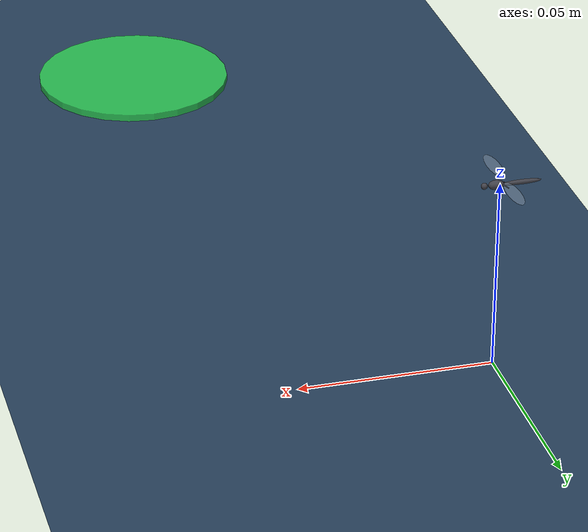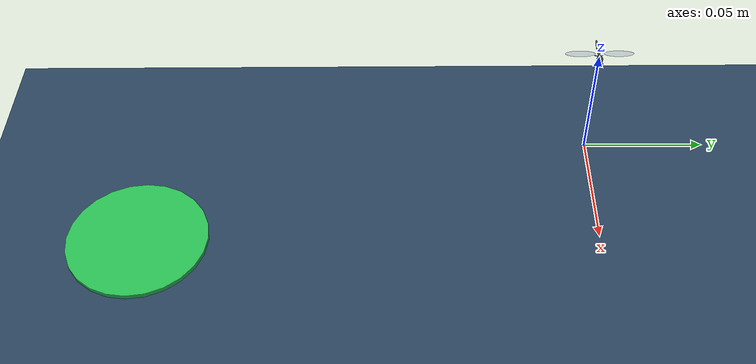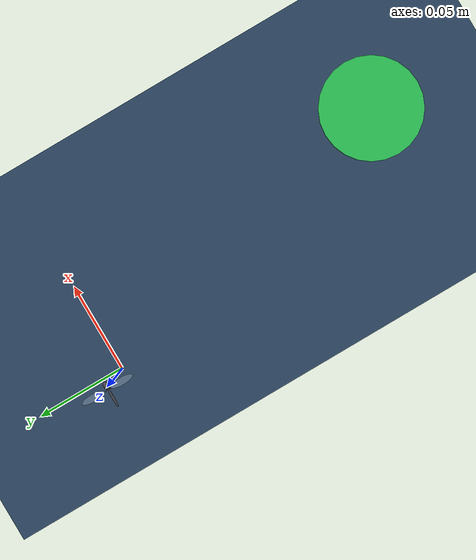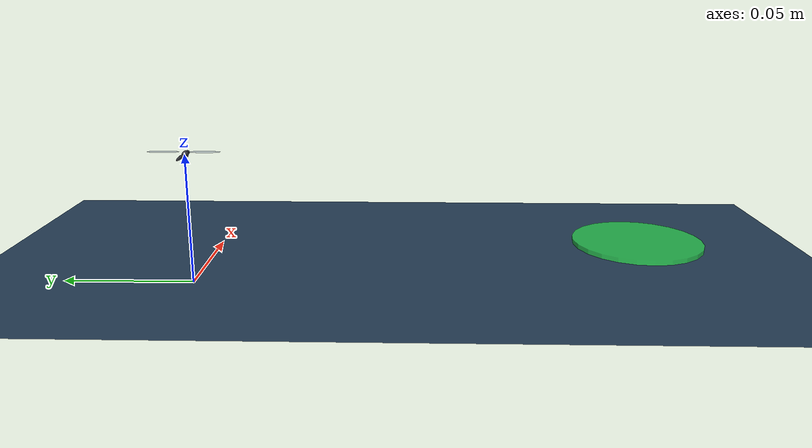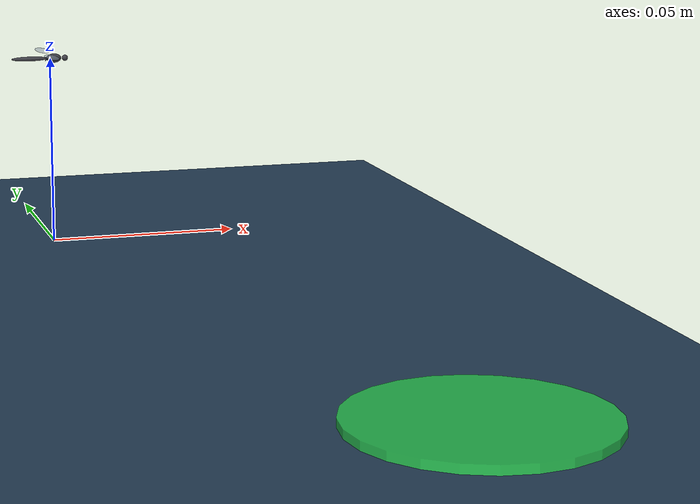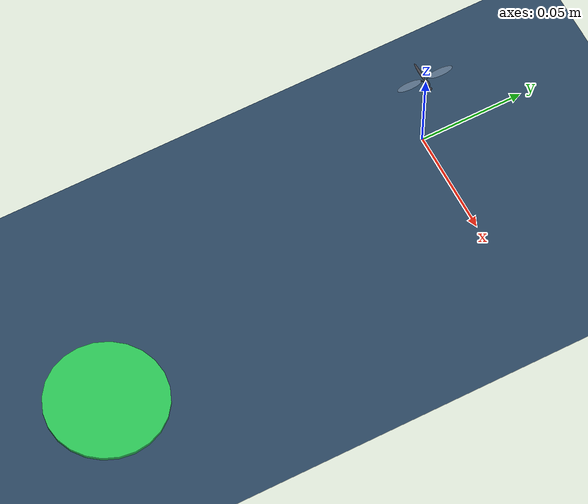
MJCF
<mujoco model="flapping_flyer">

  <option timestep="1e-4" gravity="0 0 -9.81" integrator="implicitfast"/>

  <!-- ===================== VISUALS (menagerie look) ===================== -->
  <visual>
    <headlight diffuse="0.6 0.6 0.6" ambient="0.3 0.3 0.3" specular="0 0 0"/>
    <rgba haze="0.15 0.25 0.35 1"/>
    <global azimuth="120" elevation="-20" offwidth="1280" offheight="960"/>
  </visual>

  <asset>
    <texture type="skybox" builtin="gradient" rgb1="0.3 0.5 0.7" rgb2="0 0 0"
             width="512" height="3072"/>
    <texture type="2d" name="groundplane" builtin="checker" mark="edge"
             rgb1="0.2 0.3 0.4" rgb2="0.1 0.2 0.3" markrgb="0.8 0.8 0.8"
             width="300" height="300"/>
    <material name="groundplane" texture="groundplane" texuniform="true"
              texrepeat="5 5" reflectance="0.2"/>
    <material name="thorax_mat" rgba="0.25 0.25 0.28 1"/>
    <material name="wing_mat"   rgba="0.55 0.62 0.70 0.45"/>
  </asset>

  <default>
    <joint damping="1e-8" armature="0"/>
    <geom density="1200"/>
  </default>

  <worldbody>
    <light pos="0 0 0.3" dir="0 0 -1" directional="true"
           diffuse="0.7 0.7 0.7"/>
    <geom name="floor" type="plane" size="0 0 0.01" material="groundplane"/>
    <geom name="bw0" type="box" pos="0.0000 0.0308 0.0400" size="0.0050 0.0050 0.0400" group="3" rgba="0.62 0.66 0.72 1" contype="0" conaffinity="0"/>
    <geom name="bw1" type="box" pos="0.0069 0.0308 0.0400" size="0.0050 0.0050 0.0400" group="3" rgba="0.62 0.66 0.72 1" contype="0" conaffinity="0"/>
    <geom name="bw2" type="box" pos="0.0138 0.0308 0.0400" size="0.0050 0.0050 0.0400" group="3" rgba="0.62 0.66 0.72 1" contype="0" conaffinity="0"/>
    <geom name="bw3" type="box" pos="0.0208 0.0308 0.0400" size="0.0050 0.0050 0.0400" group="3" rgba="0.62 0.66 0.72 1" contype="0" conaffinity="0"/>
    <geom name="bw4" type="box" pos="0.0277 0.0308 0.0400" size="0.0050 0.0050 0.0400" group="3" rgba="0.62 0.66 0.72 1" contype="0" conaffinity="0"/>
    <geom name="bw5" type="box" pos="0.0346 0.0308 0.0400" size="0.0050 0.0050 0.0400" group="3" rgba="0.62 0.66 0.72 1" contype="0" conaffinity="0"/>
    <geom name="bw6" type="box" pos="0.0415 0.0308 0.0400" size="0.0050 0.0050 0.0400" group="3" rgba="0.62 0.66 0.72 1" contype="0" conaffinity="0"/>
    <geom name="bw7" type="box" pos="0.0484 0.0308 0.0400" size="0.0050 0.0050 0.0400" group="3" rgba="0.62 0.66 0.72 1" contype="0" conaffinity="0"/>
    <geom name="bw8" type="box" pos="0.0554 0.0308 0.0400" size="0.0050 0.0050 0.0400" group="3" rgba="0.62 0.66 0.72 1" contype="0" conaffinity="0"/>
    <geom name="bw9" type="box" pos="0.0623 0.0308 0.0400" size="0.0050 0.0050 0.0400" group="3" rgba="0.62 0.66 0.72 1" contype="0" conaffinity="0"/>
    <geom name="bw10" type="box" pos="0.0692 0.0308 0.0400" size="0.0050 0.0050 0.0400" group="3" rgba="0.62 0.66 0.72 1" contype="0" conaffinity="0"/>
    <geom name="bw11" type="box" pos="0.0761 0.0308 0.0400" size="0.0050 0.0050 0.0400" group="3" rgba="0.62 0.66 0.72 1" contype="0" conaffinity="0"/>
    <geom name="bw12" type="box" pos="0.0831 0.0308 0.0400" size="0.0050 0.0050 0.0400" group="3" rgba="0.62 0.66 0.72 1" contype="0" conaffinity="0"/>
    <geom name="bw13" type="box" pos="0.0900 0.0308 0.0400" size="0.0050 0.0050 0.0400" group="3" rgba="0.62 0.66 0.72 1" contype="0" conaffinity="0"/>
    <geom name="bw14" type="box" pos="0.0969 0.0308 0.0400" size="0.0050 0.0050 0.0400" group="3" rgba="0.62 0.66 0.72 1" contype="0" conaffinity="0"/>
    <geom name="bw15" type="box" pos="0.1038 0.0308 0.0400" size="0.0050 0.0050 0.0400" group="3" rgba="0.62 0.66 0.72 1" contype="0" conaffinity="0"/>
    <geom name="bw16" type="box" pos="0.1107 0.0308 0.0400" size="0.0050 0.0050 0.0400" group="3" rgba="0.62 0.66 0.72 1" contype="0" conaffinity="0"/>
    <geom name="bw17" type="box" pos="0.1177 0.0308 0.0400" size="0.0050 0.0050 0.0400" group="3" rgba="0.62 0.66 0.72 1" contype="0" conaffinity="0"/>
    <geom name="bw18" type="box" pos="0.1246 0.0308 0.0400" size="0.0050 0.0050 0.0400" group="3" rgba="0.62 0.66 0.72 1" contype="0" conaffinity="0"/>
    <geom name="bw19" type="box" pos="0.1315 0.0308 0.0400" size="0.0050 0.0050 0.0400" group="3" rgba="0.62 0.66 0.72 1" contype="0" conaffinity="0"/>
    <geom name="bw20" type="box" pos="0.1384 0.0308 0.0400" size="0.0050 0.0050 0.0400" group="3" rgba="0.62 0.66 0.72 1" contype="0" conaffinity="0"/>
    <geom name="bw21" type="box" pos="0.1453 0.0308 0.0400" size="0.0050 0.0050 0.0400" group="3" rgba="0.62 0.66 0.72 1" contype="0" conaffinity="0"/>
    <geom name="bw22" type="box" pos="0.1523 0.0308 0.0400" size="0.0050 0.0050 0.0400" group="3" rgba="0.62 0.66 0.72 1" contype="0" conaffinity="0"/>
    <geom name="bw23" type="box" pos="0.1592 0.0308 0.0400" size="0.0050 0.0050 0.0400" group="3" rgba="0.62 0.66 0.72 1" contype="0" conaffinity="0"/>
    <geom name="bw24" type="box" pos="0.1661 0.0308 0.0400" size="0.0050 0.0050 0.0400" group="3" rgba="0.62 0.66 0.72 1" contype="0" conaffinity="0"/>
    <geom name="bw25" type="box" pos="0.1730 0.0308 0.0400" size="0.0050 0.0050 0.0400" group="3" rgba="0.62 0.66 0.72 1" contype="0" conaffinity="0"/>
    <geom name="bw26" type="box" pos="0.1799 0.0308 0.0400" size="0.0050 0.0050 0.0400" group="3" rgba="0.62 0.66 0.72 1" contype="0" conaffinity="0"/>
    <geom name="bw27" type="box" pos="0.1869 0.0308 0.0400" size="0.0050 0.0050 0.0400" group="3" rgba="0.62 0.66 0.72 1" contype="0" conaffinity="0"/>
    <geom name="bw28" type="box" pos="0.1938 0.0308 0.0400" size="0.0050 0.0050 0.0400" group="3" rgba="0.62 0.66 0.72 1" contype="0" conaffinity="0"/>
    <geom name="bw29" type="box" pos="0.2007 0.0308 0.0400" size="0.0050 0.0050 0.0400" group="3" rgba="0.62 0.66 0.72 1" contype="0" conaffinity="0"/>
    <geom name="bw30" type="box" pos="0.2076 0.0308 0.0400" size="0.0050 0.0050 0.0400" group="3" rgba="0.62 0.66 0.72 1" contype="0" conaffinity="0"/>
    <geom name="bw31" type="box" pos="0.2146 0.0308 0.0400" size="0.0050 0.0050 0.0400" group="3" rgba="0.62 0.66 0.72 1" contype="0" conaffinity="0"/>
    <geom name="bw32" type="box" pos="0.2215 0.0308 0.0400" size="0.0050 0.0050 0.0400" group="3" rgba="0.62 0.66 0.72 1" contype="0" conaffinity="0"/>
    <geom name="bw33" type="box" pos="0.2284 0.0308 0.0400" size="0.0050 0.0050 0.0400" group="3" rgba="0.62 0.66 0.72 1" contype="0" conaffinity="0"/>
    <geom name="bw34" type="box" pos="0.2353 0.0308 0.0400" size="0.0050 0.0050 0.0400" group="3" rgba="0.62 0.66 0.72 1" contype="0" conaffinity="0"/>
    <geom name="bw35" type="box" pos="0.2422 0.0308 0.0400" size="0.0050 0.0050 0.0400" group="3" rgba="0.62 0.66 0.72 1" contype="0" conaffinity="0"/>
    <geom name="bw36" type="box" pos="0.2492 0.0308 0.0400" size="0.0050 0.0050 0.0400" group="3" rgba="0.62 0.66 0.72 1" contype="0" conaffinity="0"/>
    <geom name="bw37" type="box" pos="0.2561 0.0308 0.0400" size="0.0050 0.0050 0.0400" group="3" rgba="0.62 0.66 0.72 1" contype="0" conaffinity="0"/>
    <geom name="bw38" type="box" pos="0.2630 0.0308 0.0400" size="0.0050 0.0050 0.0400" group="3" rgba="0.62 0.66 0.72 1" contype="0" conaffinity="0"/>
    <geom name="bw39" type="box" pos="0.0000 -0.0308 0.0400" size="0.0050 0.0050 0.0400" group="3" rgba="0.62 0.66 0.72 1" contype="0" conaffinity="0"/>
    <geom name="bw40" type="box" pos="0.0069 -0.0308 0.0400" size="0.0050 0.0050 0.0400" group="3" rgba="0.62 0.66 0.72 1" contype="0" conaffinity="0"/>
    <geom name="bw41" type="box" pos="0.0137 -0.0308 0.0400" size="0.0050 0.0050 0.0400" group="3" rgba="0.62 0.66 0.72 1" contype="0" conaffinity="0"/>
    <geom name="bw42" type="box" pos="0.0206 -0.0308 0.0400" size="0.0050 0.0050 0.0400" group="3" rgba="0.62 0.66 0.72 1" contype="0" conaffinity="0"/>
    <geom name="bw43" type="box" pos="0.0274 -0.0308 0.0400" size="0.0050 0.0050 0.0400" group="3" rgba="0.62 0.66 0.72 1" contype="0" conaffinity="0"/>
    <geom name="bw44" type="box" pos="0.0343 -0.0308 0.0400" size="0.0050 0.0050 0.0400" group="3" rgba="0.62 0.66 0.72 1" contype="0" conaffinity="0"/>
    <geom name="bw45" type="box" pos="0.0412 -0.0308 0.0400" size="0.0050 0.0050 0.0400" group="3" rgba="0.62 0.66 0.72 1" contype="0" conaffinity="0"/>
    <geom name="bw46" type="box" pos="0.0480 -0.0308 0.0400" size="0.0050 0.0050 0.0400" group="3" rgba="0.62 0.66 0.72 1" contype="0" conaffinity="0"/>
    <geom name="bw47" type="box" pos="0.0549 -0.0308 0.0400" size="0.0050 0.0050 0.0400" group="3" rgba="0.62 0.66 0.72 1" contype="0" conaffinity="0"/>
    <geom name="bw48" type="box" pos="0.0618 -0.0308 0.0400" size="0.0050 0.0050 0.0400" group="3" rgba="0.62 0.66 0.72 1" contype="0" conaffinity="0"/>
    <geom name="bw49" type="box" pos="0.0686 -0.0308 0.0400" size="0.0050 0.0050 0.0400" group="3" rgba="0.62 0.66 0.72 1" contype="0" conaffinity="0"/>
    <geom name="bw50" type="box" pos="0.0755 -0.0308 0.0400" size="0.0050 0.0050 0.0400" group="3" rgba="0.62 0.66 0.72 1" contype="0" conaffinity="0"/>
    <geom name="bw51" type="box" pos="0.0823 -0.0308 0.0400" size="0.0050 0.0050 0.0400" group="3" rgba="0.62 0.66 0.72 1" contype="0" conaffinity="0"/>
    <geom name="bw52" type="box" pos="0.0892 -0.0308 0.0400" size="0.0050 0.0050 0.0400" group="3" rgba="0.62 0.66 0.72 1" contype="0" conaffinity="0"/>
    <geom name="bw53" type="box" pos="0.0961 -0.0308 0.0400" size="0.0050 0.0050 0.0400" group="3" rgba="0.62 0.66 0.72 1" contype="0" conaffinity="0"/>
    <geom name="bw54" type="box" pos="0.1029 -0.0308 0.0400" size="0.0050 0.0050 0.0400" group="3" rgba="0.62 0.66 0.72 1" contype="0" conaffinity="0"/>
    <geom name="bw55" type="box" pos="0.1098 -0.0308 0.0400" size="0.0050 0.0050 0.0400" group="3" rgba="0.62 0.66 0.72 1" contype="0" conaffinity="0"/>
    <geom name="bw56" type="box" pos="0.1167 -0.0308 0.0400" size="0.0050 0.0050 0.0400" group="3" rgba="0.62 0.66 0.72 1" contype="0" conaffinity="0"/>
    <geom name="bw57" type="box" pos="0.1235 -0.0308 0.0400" size="0.0050 0.0050 0.0400" group="3" rgba="0.62 0.66 0.72 1" contype="0" conaffinity="0"/>
    <geom name="bw58" type="box" pos="0.1304 -0.0308 0.0400" size="0.0050 0.0050 0.0400" group="3" rgba="0.62 0.66 0.72 1" contype="0" conaffinity="0"/>
    <geom name="bw59" type="box" pos="0.1372 -0.0308 0.0400" size="0.0050 0.0050 0.0400" group="3" rgba="0.62 0.66 0.72 1" contype="0" conaffinity="0"/>
    <geom name="bw60" type="box" pos="0.1441 -0.0308 0.0400" size="0.0050 0.0050 0.0400" group="3" rgba="0.62 0.66 0.72 1" contype="0" conaffinity="0"/>
    <geom name="bw61" type="box" pos="0.1510 -0.0308 0.0400" size="0.0050 0.0050 0.0400" group="3" rgba="0.62 0.66 0.72 1" contype="0" conaffinity="0"/>
    <geom name="bw62" type="box" pos="0.1578 -0.0308 0.0400" size="0.0050 0.0050 0.0400" group="3" rgba="0.62 0.66 0.72 1" contype="0" conaffinity="0"/>
    <geom name="bw63" type="box" pos="0.1647 -0.0308 0.0400" size="0.0050 0.0050 0.0400" group="3" rgba="0.62 0.66 0.72 1" contype="0" conaffinity="0"/>
    <geom name="bw64" type="box" pos="0.1716 -0.0308 0.0400" size="0.0050 0.0050 0.0400" group="3" rgba="0.62 0.66 0.72 1" contype="0" conaffinity="0"/>
    <geom name="bw65" type="box" pos="0.1784 -0.0308 0.0400" size="0.0050 0.0050 0.0400" group="3" rgba="0.62 0.66 0.72 1" contype="0" conaffinity="0"/>
    <geom name="bw66" type="box" pos="0.1853 -0.0308 0.0400" size="0.0050 0.0050 0.0400" group="3" rgba="0.62 0.66 0.72 1" contype="0" conaffinity="0"/>
    <geom name="bw67" type="box" pos="0.1921 -0.0308 0.0400" size="0.0050 0.0050 0.0400" group="3" rgba="0.62 0.66 0.72 1" contype="0" conaffinity="0"/>
    <geom name="bw68" type="box" pos="0.1990 -0.0308 0.0400" size="0.0050 0.0050 0.0400" group="3" rgba="0.62 0.66 0.72 1" contype="0" conaffinity="0"/>
    <geom name="bw69" type="box" pos="0.2059 -0.0308 0.0400" size="0.0050 0.0050 0.0400" group="3" rgba="0.62 0.66 0.72 1" contype="0" conaffinity="0"/>
    <geom name="bw70" type="box" pos="0.2630 0.0308 0.0400" size="0.0050 0.0050 0.0400" group="3" rgba="0.62 0.66 0.72 1" contype="0" conaffinity="0"/>
    <geom name="bw71" type="box" pos="0.2630 0.0240 0.0400" size="0.0050 0.0050 0.0400" group="3" rgba="0.62 0.66 0.72 1" contype="0" conaffinity="0"/>
    <geom name="bw72" type="box" pos="0.2630 0.0172 0.0400" size="0.0050 0.0050 0.0400" group="3" rgba="0.62 0.66 0.72 1" contype="0" conaffinity="0"/>
    <geom name="bw73" type="box" pos="0.2630 0.0103 0.0400" size="0.0050 0.0050 0.0400" group="3" rgba="0.62 0.66 0.72 1" contype="0" conaffinity="0"/>
    <geom name="bw74" type="box" pos="0.2630 0.0035 0.0400" size="0.0050 0.0050 0.0400" group="3" rgba="0.62 0.66 0.72 1" contype="0" conaffinity="0"/>
    <geom name="bw75" type="box" pos="0.2630 -0.0033 0.0400" size="0.0050 0.0050 0.0400" group="3" rgba="0.62 0.66 0.72 1" contype="0" conaffinity="0"/>
    <geom name="bw76" type="box" pos="0.2630 -0.0102 0.0400" size="0.0050 0.0050 0.0400" group="3" rgba="0.62 0.66 0.72 1" contype="0" conaffinity="0"/>
    <geom name="bw77" type="box" pos="0.2630 -0.0170 0.0400" size="0.0050 0.0050 0.0400" group="3" rgba="0.62 0.66 0.72 1" contype="0" conaffinity="0"/>
    <geom name="bw78" type="box" pos="0.2630 -0.0238 0.0400" size="0.0050 0.0050 0.0400" group="3" rgba="0.62 0.66 0.72 1" contype="0" conaffinity="0"/>
    <geom name="bw79" type="box" pos="0.2630 -0.0306 0.0400" size="0.0050 0.0050 0.0400" group="3" rgba="0.62 0.66 0.72 1" contype="0" conaffinity="0"/>
    <geom name="bw80" type="box" pos="0.2630 -0.0375 0.0400" size="0.0050 0.0050 0.0400" group="3" rgba="0.62 0.66 0.72 1" contype="0" conaffinity="0"/>
    <geom name="bw81" type="box" pos="0.2630 -0.0443 0.0400" size="0.0050 0.0050 0.0400" group="3" rgba="0.62 0.66 0.72 1" contype="0" conaffinity="0"/>
    <geom name="bw82" type="box" pos="0.2630 -0.0511 0.0400" size="0.0050 0.0050 0.0400" group="3" rgba="0.62 0.66 0.72 1" contype="0" conaffinity="0"/>
    <geom name="bw83" type="box" pos="0.2630 -0.0579 0.0400" size="0.0050 0.0050 0.0400" group="3" rgba="0.62 0.66 0.72 1" contype="0" conaffinity="0"/>
    <geom name="bw84" type="box" pos="0.2630 -0.0648 0.0400" size="0.0050 0.0050 0.0400" group="3" rgba="0.62 0.66 0.72 1" contype="0" conaffinity="0"/>
    <geom name="bw85" type="box" pos="0.2630 -0.0716 0.0400" size="0.0050 0.0050 0.0400" group="3" rgba="0.62 0.66 0.72 1" contype="0" conaffinity="0"/>
    <geom name="bw86" type="box" pos="0.2630 -0.0784 0.0400" size="0.0050 0.0050 0.0400" group="3" rgba="0.62 0.66 0.72 1" contype="0" conaffinity="0"/>
    <geom name="bw87" type="box" pos="0.2630 -0.0852 0.0400" size="0.0050 0.0050 0.0400" group="3" rgba="0.62 0.66 0.72 1" contype="0" conaffinity="0"/>
    <geom name="bw88" type="box" pos="0.2630 -0.0921 0.0400" size="0.0050 0.0050 0.0400" group="3" rgba="0.62 0.66 0.72 1" contype="0" conaffinity="0"/>
    <geom name="bw89" type="box" pos="0.2630 -0.0989 0.0400" size="0.0050 0.0050 0.0400" group="3" rgba="0.62 0.66 0.72 1" contype="0" conaffinity="0"/>
    <geom name="bw90" type="box" pos="0.2630 -0.1588 0.0400" size="0.0050 0.0050 0.0400" group="3" rgba="0.62 0.66 0.72 1" contype="0" conaffinity="0"/>
    <geom name="bw91" type="box" pos="0.2630 -0.1657 0.0400" size="0.0050 0.0050 0.0400" group="3" rgba="0.62 0.66 0.72 1" contype="0" conaffinity="0"/>
    <geom name="bw92" type="box" pos="0.2630 -0.1725 0.0400" size="0.0050 0.0050 0.0400" group="3" rgba="0.62 0.66 0.72 1" contype="0" conaffinity="0"/>
    <geom name="bw93" type="box" pos="0.2630 -0.1793 0.0400" size="0.0050 0.0050 0.0400" group="3" rgba="0.62 0.66 0.72 1" contype="0" conaffinity="0"/>
    <geom name="bw94" type="box" pos="0.2630 -0.1861 0.0400" size="0.0050 0.0050 0.0400" group="3" rgba="0.62 0.66 0.72 1" contype="0" conaffinity="0"/>
    <geom name="bw95" type="box" pos="0.2630 -0.1929 0.0400" size="0.0050 0.0050 0.0400" group="3" rgba="0.62 0.66 0.72 1" contype="0" conaffinity="0"/>
    <geom name="bw96" type="box" pos="0.2630 -0.1997 0.0400" size="0.0050 0.0050 0.0400" group="3" rgba="0.62 0.66 0.72 1" contype="0" conaffinity="0"/>
    <geom name="bw97" type="box" pos="0.2630 -0.2065 0.0400" size="0.0050 0.0050 0.0400" group="3" rgba="0.62 0.66 0.72 1" contype="0" conaffinity="0"/>
    <geom name="bw98" type="box" pos="0.2630 -0.2133 0.0400" size="0.0050 0.0050 0.0400" group="3" rgba="0.62 0.66 0.72 1" contype="0" conaffinity="0"/>
    <geom name="bw99" type="box" pos="0.2059 -0.0308 0.0400" size="0.0050 0.0050 0.0400" group="3" rgba="0.62 0.66 0.72 1" contype="0" conaffinity="0"/>
    <geom name="bw100" type="box" pos="0.2059 -0.0376 0.0400" size="0.0050 0.0050 0.0400" group="3" rgba="0.62 0.66 0.72 1" contype="0" conaffinity="0"/>
    <geom name="bw101" type="box" pos="0.2059 -0.0443 0.0400" size="0.0050 0.0050 0.0400" group="3" rgba="0.62 0.66 0.72 1" contype="0" conaffinity="0"/>
    <geom name="bw102" type="box" pos="0.2059 -0.0510 0.0400" size="0.0050 0.0050 0.0400" group="3" rgba="0.62 0.66 0.72 1" contype="0" conaffinity="0"/>
    <geom name="bw103" type="box" pos="0.2059 -0.0578 0.0400" size="0.0050 0.0050 0.0400" group="3" rgba="0.62 0.66 0.72 1" contype="0" conaffinity="0"/>
    <geom name="bw104" type="box" pos="0.2059 -0.0645 0.0400" size="0.0050 0.0050 0.0400" group="3" rgba="0.62 0.66 0.72 1" contype="0" conaffinity="0"/>
    <geom name="bw105" type="box" pos="0.2059 -0.0713 0.0400" size="0.0050 0.0050 0.0400" group="3" rgba="0.62 0.66 0.72 1" contype="0" conaffinity="0"/>
    <geom name="bw106" type="box" pos="0.2059 -0.0780 0.0400" size="0.0050 0.0050 0.0400" group="3" rgba="0.62 0.66 0.72 1" contype="0" conaffinity="0"/>
    <geom name="bw107" type="box" pos="0.2059 -0.0848 0.0400" size="0.0050 0.0050 0.0400" group="3" rgba="0.62 0.66 0.72 1" contype="0" conaffinity="0"/>
    <geom name="bw108" type="box" pos="0.2059 -0.0915 0.0400" size="0.0050 0.0050 0.0400" group="3" rgba="0.62 0.66 0.72 1" contype="0" conaffinity="0"/>
    <geom name="bw109" type="box" pos="0.2059 -0.0983 0.0400" size="0.0050 0.0050 0.0400" group="3" rgba="0.62 0.66 0.72 1" contype="0" conaffinity="0"/>
    <geom name="bw110" type="box" pos="0.2059 -0.1050 0.0400" size="0.0050 0.0050 0.0400" group="3" rgba="0.62 0.66 0.72 1" contype="0" conaffinity="0"/>
    <geom name="bw111" type="box" pos="0.2059 -0.1118 0.0400" size="0.0050 0.0050 0.0400" group="3" rgba="0.62 0.66 0.72 1" contype="0" conaffinity="0"/>
    <geom name="bw112" type="box" pos="0.2059 -0.1185 0.0400" size="0.0050 0.0050 0.0400" group="3" rgba="0.62 0.66 0.72 1" contype="0" conaffinity="0"/>
    <geom name="bw113" type="box" pos="0.2059 -0.1253 0.0400" size="0.0050 0.0050 0.0400" group="3" rgba="0.62 0.66 0.72 1" contype="0" conaffinity="0"/>
    <geom name="bw114" type="box" pos="0.2059 -0.1320 0.0400" size="0.0050 0.0050 0.0400" group="3" rgba="0.62 0.66 0.72 1" contype="0" conaffinity="0"/>
    <geom name="bw115" type="box" pos="0.2059 -0.1388 0.0400" size="0.0050 0.0050 0.0400" group="3" rgba="0.62 0.66 0.72 1" contype="0" conaffinity="0"/>
    <geom name="bw116" type="box" pos="0.2059 -0.1455 0.0400" size="0.0050 0.0050 0.0400" group="3" rgba="0.62 0.66 0.72 1" contype="0" conaffinity="0"/>
    <geom name="bw117" type="box" pos="0.2059 -0.1523 0.0400" size="0.0050 0.0050 0.0400" group="3" rgba="0.62 0.66 0.72 1" contype="0" conaffinity="0"/>
    <geom name="bw118" type="box" pos="0.2630 -0.2133 0.0400" size="0.0050 0.0050 0.0400" group="3" rgba="0.62 0.66 0.72 1" contype="0" conaffinity="0"/>
    <geom name="bw119" type="box" pos="0.2562 -0.2133 0.0400" size="0.0050 0.0050 0.0400" group="3" rgba="0.62 0.66 0.72 1" contype="0" conaffinity="0"/>
    <geom name="bw120" type="box" pos="0.2493 -0.2133 0.0400" size="0.0050 0.0050 0.0400" group="3" rgba="0.62 0.66 0.72 1" contype="0" conaffinity="0"/>
    <geom name="bw121" type="box" pos="0.2425 -0.2133 0.0400" size="0.0050 0.0050 0.0400" group="3" rgba="0.62 0.66 0.72 1" contype="0" conaffinity="0"/>
    <geom name="bw122" type="box" pos="0.2357 -0.2133 0.0400" size="0.0050 0.0050 0.0400" group="3" rgba="0.62 0.66 0.72 1" contype="0" conaffinity="0"/>
    <geom name="bw123" type="box" pos="0.2288 -0.2133 0.0400" size="0.0050 0.0050 0.0400" group="3" rgba="0.62 0.66 0.72 1" contype="0" conaffinity="0"/>
    <geom name="bw124" type="box" pos="0.2220 -0.2133 0.0400" size="0.0050 0.0050 0.0400" group="3" rgba="0.62 0.66 0.72 1" contype="0" conaffinity="0"/>
    <geom name="bw125" type="box" pos="0.2152 -0.2133 0.0400" size="0.0050 0.0050 0.0400" group="3" rgba="0.62 0.66 0.72 1" contype="0" conaffinity="0"/>
    <geom name="bw126" type="box" pos="0.2083 -0.2133 0.0400" size="0.0050 0.0050 0.0400" group="3" rgba="0.62 0.66 0.72 1" contype="0" conaffinity="0"/>
    <geom name="bw127" type="box" pos="0.2015 -0.2133 0.0400" size="0.0050 0.0050 0.0400" group="3" rgba="0.62 0.66 0.72 1" contype="0" conaffinity="0"/>
    <geom name="bw128" type="box" pos="0.1946 -0.2133 0.0400" size="0.0050 0.0050 0.0400" group="3" rgba="0.62 0.66 0.72 1" contype="0" conaffinity="0"/>
    <geom name="bw129" type="box" pos="0.1878 -0.2133 0.0400" size="0.0050 0.0050 0.0400" group="3" rgba="0.62 0.66 0.72 1" contype="0" conaffinity="0"/>
    <geom name="bw130" type="box" pos="0.1810 -0.2133 0.0400" size="0.0050 0.0050 0.0400" group="3" rgba="0.62 0.66 0.72 1" contype="0" conaffinity="0"/>
    <geom name="bw131" type="box" pos="0.1741 -0.2133 0.0400" size="0.0050 0.0050 0.0400" group="3" rgba="0.62 0.66 0.72 1" contype="0" conaffinity="0"/>
    <geom name="bw132" type="box" pos="0.1673 -0.2133 0.0400" size="0.0050 0.0050 0.0400" group="3" rgba="0.62 0.66 0.72 1" contype="0" conaffinity="0"/>
    <geom name="bw133" type="box" pos="0.1605 -0.2133 0.0400" size="0.0050 0.0050 0.0400" group="3" rgba="0.62 0.66 0.72 1" contype="0" conaffinity="0"/>
    <geom name="bw134" type="box" pos="0.1536 -0.2133 0.0400" size="0.0050 0.0050 0.0400" group="3" rgba="0.62 0.66 0.72 1" contype="0" conaffinity="0"/>
    <geom name="bw135" type="box" pos="0.1468 -0.2133 0.0400" size="0.0050 0.0050 0.0400" group="3" rgba="0.62 0.66 0.72 1" contype="0" conaffinity="0"/>
    <geom name="bw136" type="box" pos="0.1400 -0.2133 0.0400" size="0.0050 0.0050 0.0400" group="3" rgba="0.62 0.66 0.72 1" contype="0" conaffinity="0"/>
    <geom name="bw137" type="box" pos="0.1331 -0.2133 0.0400" size="0.0050 0.0050 0.0400" group="3" rgba="0.62 0.66 0.72 1" contype="0" conaffinity="0"/>
    <geom name="bw138" type="box" pos="0.1263 -0.2133 0.0400" size="0.0050 0.0050 0.0400" group="3" rgba="0.62 0.66 0.72 1" contype="0" conaffinity="0"/>
    <geom name="bw139" type="box" pos="0.1194 -0.2133 0.0400" size="0.0050 0.0050 0.0400" group="3" rgba="0.62 0.66 0.72 1" contype="0" conaffinity="0"/>
    <geom name="bw140" type="box" pos="0.1126 -0.2133 0.0400" size="0.0050 0.0050 0.0400" group="3" rgba="0.62 0.66 0.72 1" contype="0" conaffinity="0"/>
    <geom name="bw141" type="box" pos="0.1058 -0.2133 0.0400" size="0.0050 0.0050 0.0400" group="3" rgba="0.62 0.66 0.72 1" contype="0" conaffinity="0"/>
    <geom name="bw142" type="box" pos="0.0989 -0.2133 0.0400" size="0.0050 0.0050 0.0400" group="3" rgba="0.62 0.66 0.72 1" contype="0" conaffinity="0"/>
    <geom name="bw143" type="box" pos="0.0921 -0.2133 0.0400" size="0.0050 0.0050 0.0400" group="3" rgba="0.62 0.66 0.72 1" contype="0" conaffinity="0"/>
    <geom name="bw144" type="box" pos="0.0853 -0.2133 0.0400" size="0.0050 0.0050 0.0400" group="3" rgba="0.62 0.66 0.72 1" contype="0" conaffinity="0"/>
    <geom name="bw145" type="box" pos="0.0784 -0.2133 0.0400" size="0.0050 0.0050 0.0400" group="3" rgba="0.62 0.66 0.72 1" contype="0" conaffinity="0"/>
    <geom name="bw146" type="box" pos="0.0716 -0.2133 0.0400" size="0.0050 0.0050 0.0400" group="3" rgba="0.62 0.66 0.72 1" contype="0" conaffinity="0"/>
    <geom name="bw147" type="box" pos="0.0648 -0.2133 0.0400" size="0.0050 0.0050 0.0400" group="3" rgba="0.62 0.66 0.72 1" contype="0" conaffinity="0"/>
    <geom name="bw148" type="box" pos="0.0579 -0.2133 0.0400" size="0.0050 0.0050 0.0400" group="3" rgba="0.62 0.66 0.72 1" contype="0" conaffinity="0"/>
    <geom name="bw149" type="box" pos="0.0511 -0.2133 0.0400" size="0.0050 0.0050 0.0400" group="3" rgba="0.62 0.66 0.72 1" contype="0" conaffinity="0"/>
    <geom name="bw150" type="box" pos="0.2059 -0.1523 0.0400" size="0.0050 0.0050 0.0400" group="3" rgba="0.62 0.66 0.72 1" contype="0" conaffinity="0"/>
    <geom name="bw151" type="box" pos="0.1992 -0.1523 0.0400" size="0.0050 0.0050 0.0400" group="3" rgba="0.62 0.66 0.72 1" contype="0" conaffinity="0"/>
    <geom name="bw152" type="box" pos="0.1925 -0.1523 0.0400" size="0.0050 0.0050 0.0400" group="3" rgba="0.62 0.66 0.72 1" contype="0" conaffinity="0"/>
    <geom name="bw153" type="box" pos="0.1859 -0.1523 0.0400" size="0.0050 0.0050 0.0400" group="3" rgba="0.62 0.66 0.72 1" contype="0" conaffinity="0"/>
    <geom name="bw154" type="box" pos="0.1792 -0.1523 0.0400" size="0.0050 0.0050 0.0400" group="3" rgba="0.62 0.66 0.72 1" contype="0" conaffinity="0"/>
    <geom name="bw155" type="box" pos="0.1726 -0.1523 0.0400" size="0.0050 0.0050 0.0400" group="3" rgba="0.62 0.66 0.72 1" contype="0" conaffinity="0"/>
    <geom name="bw156" type="box" pos="0.1659 -0.1523 0.0400" size="0.0050 0.0050 0.0400" group="3" rgba="0.62 0.66 0.72 1" contype="0" conaffinity="0"/>
    <geom name="bw157" type="box" pos="0.1592 -0.1523 0.0400" size="0.0050 0.0050 0.0400" group="3" rgba="0.62 0.66 0.72 1" contype="0" conaffinity="0"/>
    <geom name="bw158" type="box" pos="0.1526 -0.1523 0.0400" size="0.0050 0.0050 0.0400" group="3" rgba="0.62 0.66 0.72 1" contype="0" conaffinity="0"/>
    <geom name="bw159" type="box" pos="0.1459 -0.1523 0.0400" size="0.0050 0.0050 0.0400" group="3" rgba="0.62 0.66 0.72 1" contype="0" conaffinity="0"/>
    <geom name="bw160" type="box" pos="0.1392 -0.1523 0.0400" size="0.0050 0.0050 0.0400" group="3" rgba="0.62 0.66 0.72 1" contype="0" conaffinity="0"/>
    <geom name="bw161" type="box" pos="0.0963 -0.1523 0.0400" size="0.0050 0.0050 0.0400" group="3" rgba="0.62 0.66 0.72 1" contype="0" conaffinity="0"/>
    <geom name="bw162" type="box" pos="0.0898 -0.1523 0.0400" size="0.0050 0.0050 0.0400" group="3" rgba="0.62 0.66 0.72 1" contype="0" conaffinity="0"/>
    <geom name="bw163" type="box" pos="0.0834 -0.1523 0.0400" size="0.0050 0.0050 0.0400" group="3" rgba="0.62 0.66 0.72 1" contype="0" conaffinity="0"/>
    <geom name="bw164" type="box" pos="0.0769 -0.1523 0.0400" size="0.0050 0.0050 0.0400" group="3" rgba="0.62 0.66 0.72 1" contype="0" conaffinity="0"/>
    <geom name="bw165" type="box" pos="0.0705 -0.1523 0.0400" size="0.0050 0.0050 0.0400" group="3" rgba="0.62 0.66 0.72 1" contype="0" conaffinity="0"/>
    <geom name="bw166" type="box" pos="0.0640 -0.1523 0.0400" size="0.0050 0.0050 0.0400" group="3" rgba="0.62 0.66 0.72 1" contype="0" conaffinity="0"/>
    <geom name="bw167" type="box" pos="0.0575 -0.1523 0.0400" size="0.0050 0.0050 0.0400" group="3" rgba="0.62 0.66 0.72 1" contype="0" conaffinity="0"/>
    <geom name="bw168" type="box" pos="0.0511 -0.1523 0.0400" size="0.0050 0.0050 0.0400" group="3" rgba="0.62 0.66 0.72 1" contype="0" conaffinity="0"/>
    <geom name="fin0" type="cylinder" pos="0.0511 -0.1828 0.001" size="0.0280 0.001" rgba="0.2 0.85 0.35 0.85" group="2" contype="0" conaffinity="0"/>

    <body name="thorax" pos="0 0 0.05">

      <!-- main flight mass: thorax block, just below the wing hinges -->
      <geom name="thorax_g" type="ellipsoid" pos="0.001 0 0"
            size="0.0020 0.0012 0.0012" mass="60e-6" material="thorax_mat"/>
      <!-- head: small, forward -->
      <geom name="head_g" type="sphere" pos="0.0040 0 0"
            size="0.0008" mass="3e-6" material="thorax_mat"/>
      <!-- abdomen / tail: long, THIN, LIGHT, trailing aft. Tapered ellipsoid
           reads as an abdomen and gives a little aft area for pitch stability
           at almost no mass cost. -->
      <geom name="tail_g" type="ellipsoid" pos="-0.0055 0 0"
            size="0.0050 0.0006 0.0006" mass="12e-6" material="thorax_mat"/>

      <!-- halteres: tiny nubs just behind the wing bases. Visual now,
           EARMARKED as the future rate sensor. Mass ~0.1 mg each (negligible). -->
      <geom name="haltere_R" type="capsule" fromto="-0.0008 0.0007 0  -0.0016 0.0016 -0.0004"
            size="0.00012" mass="1e-7" material="thorax_mat"/>
      <geom name="haltere_L" type="capsule" fromto="-0.0008 -0.0007 0  -0.0016 -0.0016 -0.0004"
            size="0.00012" mass="1e-7" material="thorax_mat"/>

      <!-- ============ RIGHT WING (extends +y) ============
           shoulder above & right of the thorax centre -->
      <body name="stroke_R" pos="0 0.0010 0.0012">
        <joint name="stroke_R" type="hinge" axis="0 0 1" range="-90 90" armature="1e-8"/>
        <inertial pos="0 0 0" mass="1e-7" diaginertia="1e-13 1e-13 1e-13"/>
        <body name="wing_R" pos="0 0 0">
          <joint name="pitch_R" type="hinge" axis="0 1 0" range="-120 120" armature="1e-8"/>
          <geom name="wing_R_g" type="ellipsoid" pos="-0.000875 0.0066 0"
                size="0.00175 0.0060 0.000025" material="wing_mat"
                mass="1.0e-6"/>
        </body>
      </body>

      <!-- ============ LEFT WING (extends -y) ============ -->
      <body name="stroke_L" pos="0 -0.0010 0.0012">
        <joint name="stroke_L" type="hinge" axis="0 0 1" range="-90 90" armature="1e-8"/>
        <inertial pos="0 0 0" mass="1e-7" diaginertia="1e-13 1e-13 1e-13"/>
        <body name="wing_L" pos="0 0 0">
          <joint name="pitch_L" type="hinge" axis="0 1 0" range="-120 120" armature="1e-8"/>
          <geom name="wing_L_g" type="ellipsoid" pos="-0.000875 -0.0066 0"
                size="0.00175 0.0060 0.000025" material="wing_mat"
                mass="1.0e-6"/>
        </body>
      </body>
    </body>
  </worldbody>

  <!-- Position actuators on the four hinges. Gains kept gentle so they are
       stable under implicitfast; Stage 2 may instead PRESCRIBE kinematics. -->
  <actuator>
    <position name="a_stroke_R" joint="stroke_R" kp="0.01" kv="1e-5"/>
    <position name="a_pitch_R"  joint="pitch_R"  kp="0.01" kv="1e-5"/>
    <position name="a_stroke_L" joint="stroke_L" kp="0.01" kv="1e-5"/>
    <position name="a_pitch_L"  joint="pitch_L"  kp="0.01" kv="1e-5"/>
  </actuator>
</mujoco>
